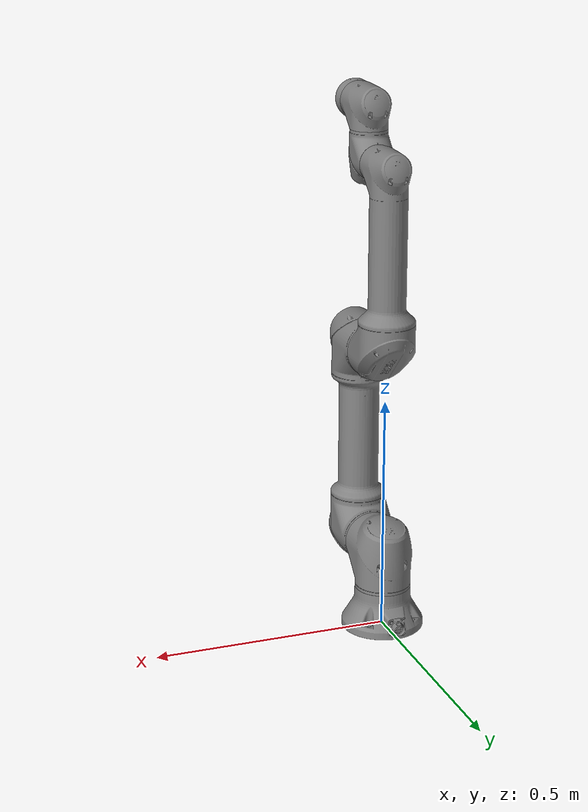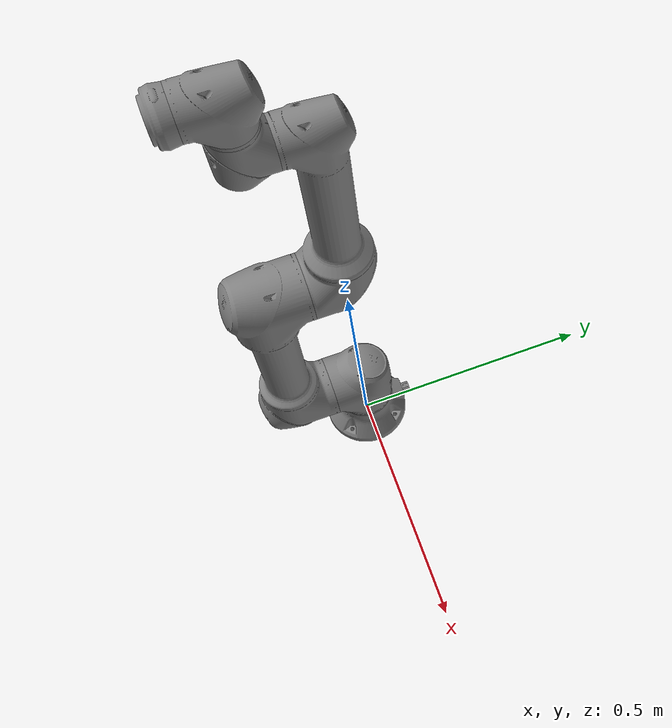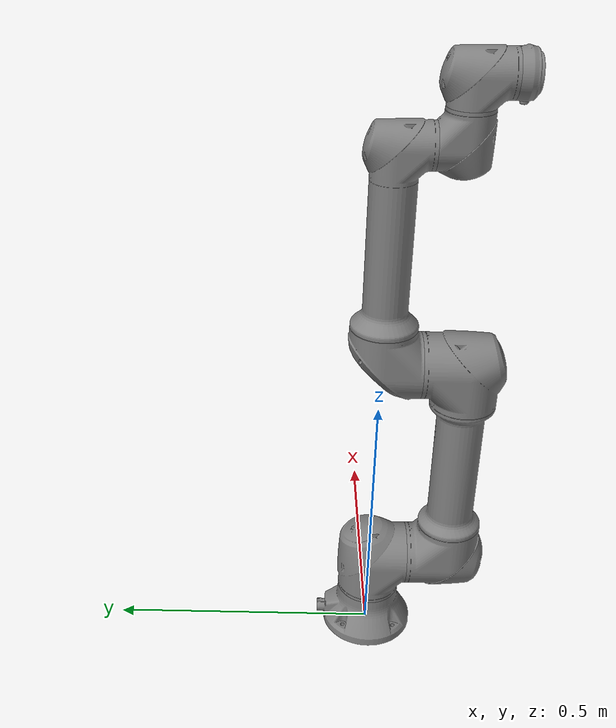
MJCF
<mujoco model="rb5_850e">
  <compiler angle="radian"/>

  <asset>
    <mesh name="link0" file="link0.stl"/>
    <mesh name="link1" file="link1.stl"/>
    <mesh name="link2" file="link2.stl"/>
    <mesh name="link3" file="link3.stl"/>
    <mesh name="link4" file="link4.stl"/>
    <mesh name="link5" file="link5.stl"/>
    <mesh name="link6" file="link6.stl"/>
  </asset>

  <worldbody>
    <geom type="mesh" mesh="link0"/>
    <body name="link1" pos="0 0 0.1692">
      <inertial pos="5.7e-05 -0.005795 -0.034516" quat="0.676677 0.181125 -0.183239 0.689729" mass="4.147" diaginertia="0.00940157 0.00878691 0.0073332"/>
      <joint name="base" pos="0 0 0" axis="0 0 1" range="-3.14 3.14" actuatorfrcrange="-10 10"/>
      <geom type="mesh" mesh="link1"/>
      <body name="link2">
        <inertial pos="-3.7e-05 -0.121603 0.212933" quat="0.999997 0.000348233 7.80187e-05 -0.00223104" mass="9.633" diaginertia="0.392214 0.388915 0.0219492"/>
        <joint name="shoulder" pos="0 0 0" axis="0 1 0" range="-3.14 3.14" actuatorfrcrange="-10 10"/>
        <geom type="mesh" mesh="link2"/>
        <body name="link3" pos="0 0 0.425">
          <inertial pos="2.1e-05 -0.015845 0.202568" quat="0.999948 0.0100341 -5.40187e-05 -0.00170427" mass="3.915" diaginertia="0.11204 0.111832 0.0075271"/>
          <joint name="elbow" pos="0 0 0" axis="0 1 0" range="-3.14 3.14" actuatorfrcrange="-10 10"/>
          <geom type="mesh" mesh="link3"/>
          <body name="link4" pos="0 0 0.392">
            <inertial pos="5.7e-05 -0.106332 0.025881" quat="0.986693 0.162394 -0.00142514 0.00799378" mass="1.452" diaginertia="0.00162904 0.00160108 0.00118182"/>
            <joint name="wrist1" pos="0 0 0" axis="0 1 0" range="-3.14 3.14" actuatorfrcrange="-10 10"/>
            <geom type="mesh" mesh="link4"/>
            <body name="link5" pos="0 -0.1107 0.1107">
              <inertial pos="-2.8e-05 -0.025911 -0.004363" quat="0.812497 0.582798 -0.00662653 0.0123056" mass="1.454" diaginertia="0.00163147 0.00160354 0.00118381"/>
              <joint name="wrist2" pos="0 0 0" axis="0 0 1" range="-3.14 3.14" actuatorfrcrange="-10 10"/>
              <geom type="mesh" mesh="link5"/>
              <body name="link6">
                <inertial pos="-2e-06 -0.079964 -0.000494" quat="0.706709 -0.0427371 -0.0387873 0.705146" mass="0.243" diaginertia="0.000243707 0.000147897 0.000142261"/>
                <joint name="wrist3" pos="0 0 0" axis="0 1 0" range="-3.14 3.14" actuatorfrcrange="-10 10"/>
                <geom type="mesh" mesh="link6"/>
              </body>
            </body>
          </body>
        </body>
      </body>
    </body>
  </worldbody>
</mujoco>
